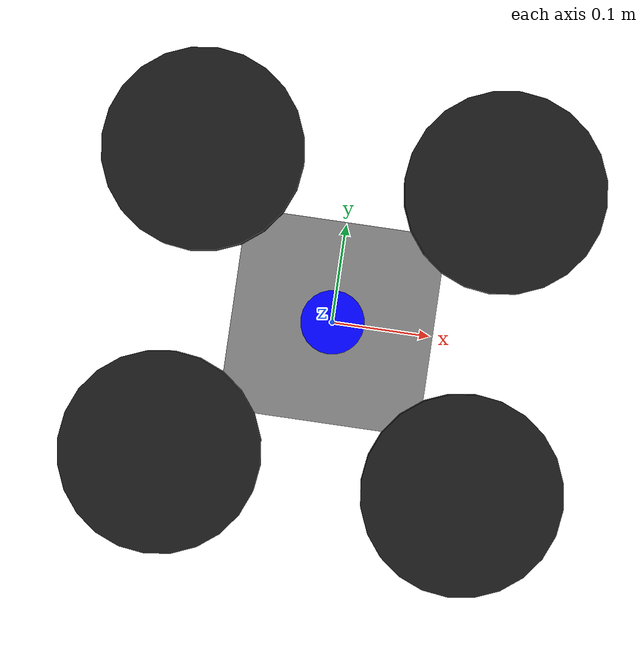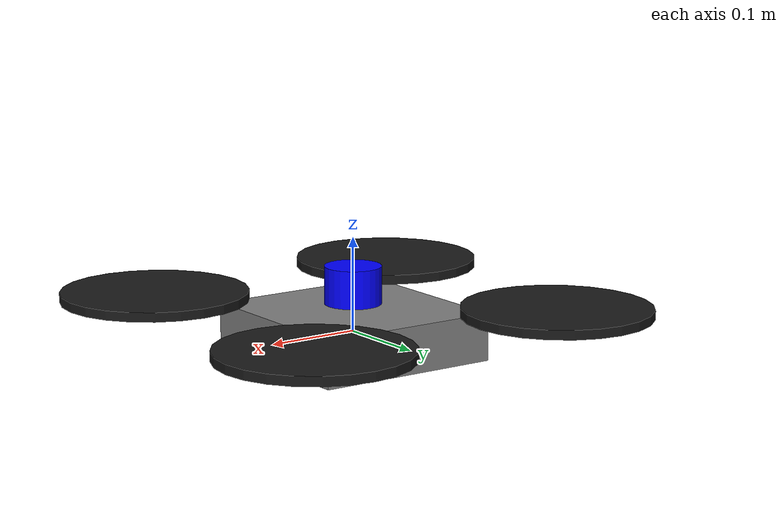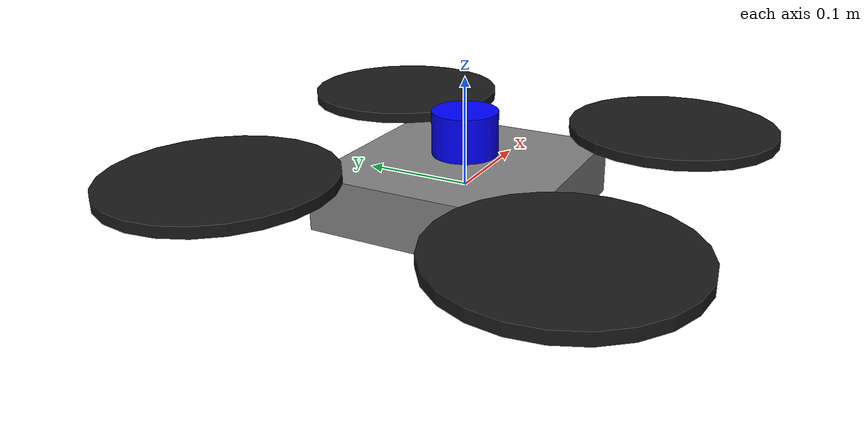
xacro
<?xml version="1.0"?>
<robot xmlns:xacro="http://www.ros.org/wiki/xacro" name="drone_robot">

  <!-- Base Link (Central Body) -->
  <link name="base_link">
    <visual>
      <geometry>
        <box size="0.2 0.2 0.05"/>
      </geometry>
      <material name="gray">
        <color rgba="0.5 0.5 0.5 1.0"/>
      </material>
    </visual>
    <collision>
      <geometry>
        <box size="0.2 0.2 0.05"/>
      </geometry>
    </collision>
    <inertial>
      <mass value="1.0"/>
      <inertia ixx="0.01" ixy="0.0" ixz="0.0" iyy="0.01" iyz="0.0" izz="0.02"/>
    </inertial>
  </link>
  <!-- LiDAR Link -->
  <link name="lidar_link">
    <visual>
      <geometry>
        <cylinder radius="0.03" length="0.04"/>
      </geometry>
      <material name="blue">
        <color rgba="0.0 0.0 1.0 1.0"/>
      </material>
    </visual>
    <collision>
      <geometry>
        <cylinder radius="0.03" length="0.04"/>
      </geometry>
    </collision>
    <inertial>
      <mass value="0.1"/>
      <inertia ixx="0.0001" ixy="0.0" ixz="0.0" iyy="0.0001" iyz="0.0" izz="0.0001"/>
    </inertial>
  </link>

  <joint name="lidar_joint" type="fixed">
    <parent link="base_link"/>
    <child link="lidar_link"/>
    <origin xyz="0 0 0.05" rpy="0 0 0"/>
  </joint>

  <!-- Rotor Macro (Template to avoid repeating code 4 times) -->
  <xacro:macro name="rotor" params="name x y">
    <link name="${name}">
      <visual>
        <geometry>
          <cylinder radius="0.1" length="0.01"/>
        </geometry>
        <material name="black">
          <color rgba="0.1 0.1 0.1 1.0"/>
        </material>
      </visual>
      <collision>
        <geometry>
          <cylinder radius="0.1" length="0.01"/>
        </geometry>
      </collision>
      <inertial>
        <mass value="0.05"/>
        <inertia ixx="0.0001" ixy="0.0" ixz="0.0" iyy="0.0001" iyz="0.0" izz="0.0002"/>
      </inertial>
    </link>

    <!-- Continuous Joint connecting base to rotor -->
    <joint name="${name}_joint" type="continuous">
      <parent link="base_link"/>
      <child link="${name}"/>
      <origin xyz="${x} ${y} 0.03" rpy="0 0 0"/>
      <axis xyz="0 0 1"/>
    </joint>
  </xacro:macro>

  <!-- Instantiate the 4 Rotors -->
  <xacro:rotor name="rotor_front_left" x="0.15" y="0.15"/>
  <xacro:rotor name="rotor_front_right" x="0.15" y="-0.15"/>
  <xacro:rotor name="rotor_rear_left" x="-0.15" y="0.15"/>
  <xacro:rotor name="rotor_rear_right" x="-0.15" y="-0.15"/>

<xacro:include filename="robot.gazebo"/>

</robot>
